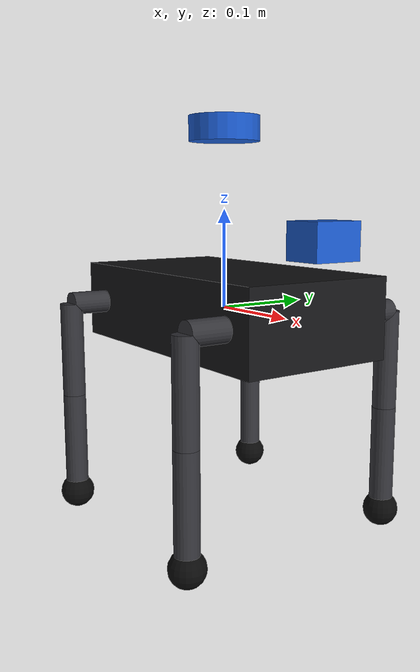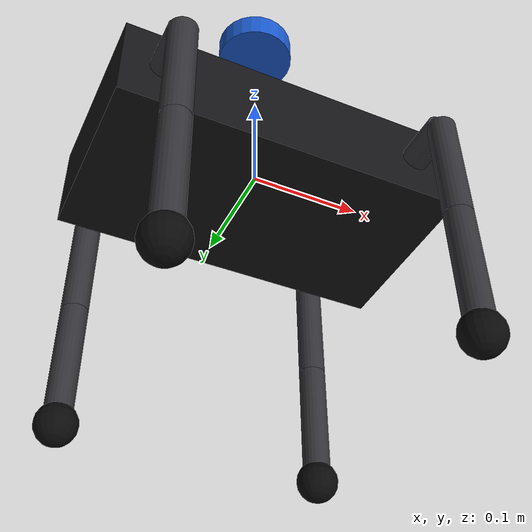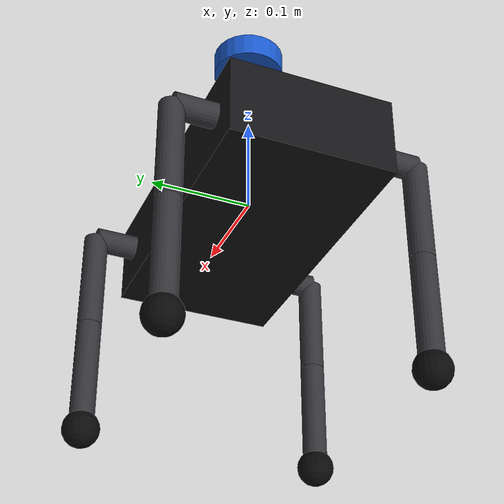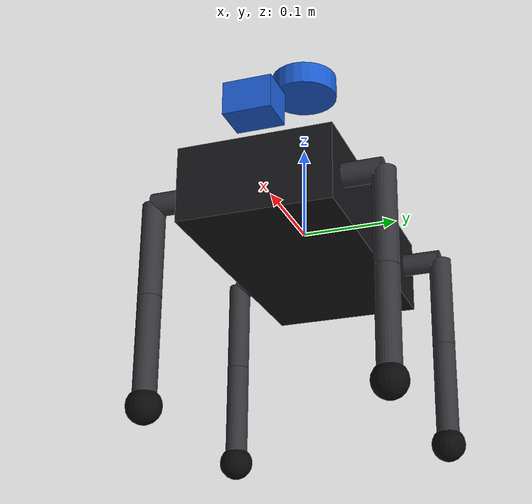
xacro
<?xml version="1.0"?>
<robot name="dogzilla_s2" xmlns:xacro="http://www.ros.org/wiki/xacro">
  <xacro:include filename="dogzilla_leg.xacro"/>

  <xacro:arg name="camera_x" default="0.150"/>
  <xacro:arg name="camera_y" default="0.000"/>
  <xacro:arg name="camera_z" default="0.075"/>
  <xacro:arg name="camera_roll" default="0.000"/>
  <xacro:arg name="camera_pitch" default="0.000"/>
  <xacro:arg name="camera_yaw" default="0.000"/>
  <xacro:arg name="include_lidar" default="true"/>
  <xacro:arg name="include_imu" default="true"/>

  <xacro:property name="base_length" value="0.300"/>
  <xacro:property name="base_width" value="0.160"/>
  <xacro:property name="base_height" value="0.080"/>
  <xacro:property name="base_mass" value="4.000"/>
  <xacro:property name="hip_offset" value="0.040"/>
  <xacro:property name="upper_leg_length" value="0.100"/>
  <xacro:property name="lower_leg_length" value="0.110"/>
  <xacro:property name="leg_radius" value="0.012"/>
  <xacro:property name="foot_radius" value="0.018"/>

  <material name="dogzilla_body_material">
    <color rgba="0.08 0.08 0.09 1.0"/>
  </material>
  <material name="dogzilla_leg_material">
    <color rgba="0.20 0.20 0.22 1.0"/>
  </material>
  <material name="dogzilla_foot_material">
    <color rgba="0.04 0.04 0.04 1.0"/>
  </material>
  <material name="dogzilla_sensor_material">
    <color rgba="0.10 0.35 0.80 1.0"/>
  </material>

  <link name="base_link">
    <inertial>
      <mass value="${base_mass}"/>
      <origin xyz="0 0 0" rpy="0 0 0"/>
      <inertia
        ixx="${base_mass * (base_width * base_width + base_height * base_height) / 12.0}"
        ixy="0" ixz="0"
        iyy="${base_mass * (base_length * base_length + base_height * base_height) / 12.0}"
        iyz="0"
        izz="${base_mass * (base_length * base_length + base_width * base_width) / 12.0}"/>
    </inertial>
    <visual>
      <geometry>
        <box size="${base_length} ${base_width} ${base_height}"/>
      </geometry>
      <material name="dogzilla_body_material"/>
    </visual>
    <collision>
      <geometry>
        <box size="${base_length} ${base_width} ${base_height}"/>
      </geometry>
    </collision>
  </link>

  <xacro:dogzilla_leg
    leg="1" parent="base_link" mount_x="0.115" mount_y="0.080" side="1"/>
  <xacro:dogzilla_leg
    leg="2" parent="base_link" mount_x="0.115" mount_y="-0.080" side="-1"/>
  <xacro:dogzilla_leg
    leg="3" parent="base_link" mount_x="-0.115" mount_y="0.080" side="1"/>
  <xacro:dogzilla_leg
    leg="4" parent="base_link" mount_x="-0.115" mount_y="-0.080" side="-1"/>

  <xacro:if value="$(arg include_lidar)">
    <link name="laser_frame">
      <visual>
        <geometry>
          <cylinder radius="0.036" length="0.025"/>
        </geometry>
        <material name="dogzilla_sensor_material"/>
      </visual>
    </link>
    <joint name="laser_mount_joint" type="fixed">
      <origin xyz="0.000 0.000 0.180" rpy="0 0 0"/>
      <parent link="base_link"/>
      <child link="laser_frame"/>
    </joint>
  </xacro:if>

  <xacro:if value="$(arg include_imu)">
    <link name="imu_link"/>
    <joint name="imu_mount_joint" type="fixed">
      <origin xyz="0.085 0.000 0.070" rpy="0 0 0"/>
      <parent link="base_link"/>
      <child link="imu_link"/>
    </joint>
  </xacro:if>

  <link name="camera_link">
    <visual>
      <geometry>
        <box size="0.040 0.050 0.035"/>
      </geometry>
      <material name="dogzilla_sensor_material"/>
    </visual>
  </link>
  <joint name="camera_mount_joint" type="fixed">
    <origin
      xyz="$(arg camera_x) $(arg camera_y) $(arg camera_z)"
      rpy="$(arg camera_roll) $(arg camera_pitch) $(arg camera_yaw)"/>
    <parent link="base_link"/>
    <child link="camera_link"/>
  </joint>

  <!-- REP-103 optical convention: +z forward, +x right, +y down. -->
  <link name="camera_optical_frame"/>
  <joint name="camera_optical_joint" type="fixed">
    <origin xyz="0 0 0" rpy="-1.57079632679 0 -1.57079632679"/>
    <parent link="camera_link"/>
    <child link="camera_optical_frame"/>
  </joint>
</robot>

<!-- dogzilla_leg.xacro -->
<robot xmlns:xacro="http://www.ros.org/wiki/xacro">
  <xacro:macro
    name="dogzilla_leg"
    params="leg parent mount_x mount_y side">
    <link name="leg${leg}_hip_link">
      <visual>
        <origin xyz="0 ${side * hip_offset / 2.0} 0" rpy="1.57079632679 0 0"/>
        <geometry>
          <cylinder radius="${leg_radius}" length="${hip_offset}"/>
        </geometry>
        <material name="dogzilla_leg_material"/>
      </visual>
      <collision>
        <origin xyz="0 ${side * hip_offset / 2.0} 0" rpy="1.57079632679 0 0"/>
        <geometry>
          <cylinder radius="${leg_radius}" length="${hip_offset}"/>
        </geometry>
      </collision>
    </link>

    <joint name="leg${leg}_motor1_joint" type="revolute">
      <origin xyz="${mount_x} ${mount_y} 0" rpy="0 0 0"/>
      <parent link="${parent}"/>
      <child link="leg${leg}_hip_link"/>
      <axis xyz="1 0 0"/>
      <limit lower="-2.2" upper="2.2" effort="8.0" velocity="4.0"/>
    </joint>

    <link name="leg${leg}_upper_link">
      <visual>
        <origin xyz="0 0 ${-upper_leg_length / 2.0}" rpy="0 0 0"/>
        <geometry>
          <cylinder radius="${leg_radius}" length="${upper_leg_length}"/>
        </geometry>
        <material name="dogzilla_leg_material"/>
      </visual>
      <collision>
        <origin xyz="0 0 ${-upper_leg_length / 2.0}" rpy="0 0 0"/>
        <geometry>
          <cylinder radius="${leg_radius}" length="${upper_leg_length}"/>
        </geometry>
      </collision>
    </link>

    <joint name="leg${leg}_motor2_joint" type="revolute">
      <origin xyz="0 ${side * hip_offset} 0" rpy="0 0 0"/>
      <parent link="leg${leg}_hip_link"/>
      <child link="leg${leg}_upper_link"/>
      <axis xyz="0 1 0"/>
      <limit lower="-2.2" upper="2.2" effort="8.0" velocity="4.0"/>
    </joint>

    <link name="leg${leg}_lower_link">
      <visual>
        <origin xyz="0 0 ${-lower_leg_length / 2.0}" rpy="0 0 0"/>
        <geometry>
          <cylinder radius="${leg_radius}" length="${lower_leg_length}"/>
        </geometry>
        <material name="dogzilla_leg_material"/>
      </visual>
      <collision>
        <origin xyz="0 0 ${-lower_leg_length / 2.0}" rpy="0 0 0"/>
        <geometry>
          <cylinder radius="${leg_radius}" length="${lower_leg_length}"/>
        </geometry>
      </collision>
    </link>

    <joint name="leg${leg}_motor3_joint" type="revolute">
      <origin xyz="0 0 ${-upper_leg_length}" rpy="0 0 0"/>
      <parent link="leg${leg}_upper_link"/>
      <child link="leg${leg}_lower_link"/>
      <axis xyz="0 1 0"/>
      <limit lower="-2.2" upper="2.2" effort="8.0" velocity="4.0"/>
    </joint>

    <link name="leg${leg}_foot_link">
      <visual>
        <geometry>
          <sphere radius="${foot_radius}"/>
        </geometry>
        <material name="dogzilla_foot_material"/>
      </visual>
      <collision>
        <geometry>
          <sphere radius="${foot_radius}"/>
        </geometry>
      </collision>
    </link>

    <joint name="leg${leg}_foot_joint" type="fixed">
      <origin xyz="0 0 ${-lower_leg_length}" rpy="0 0 0"/>
      <parent link="leg${leg}_lower_link"/>
      <child link="leg${leg}_foot_link"/>
    </joint>
  </xacro:macro>
</robot>
